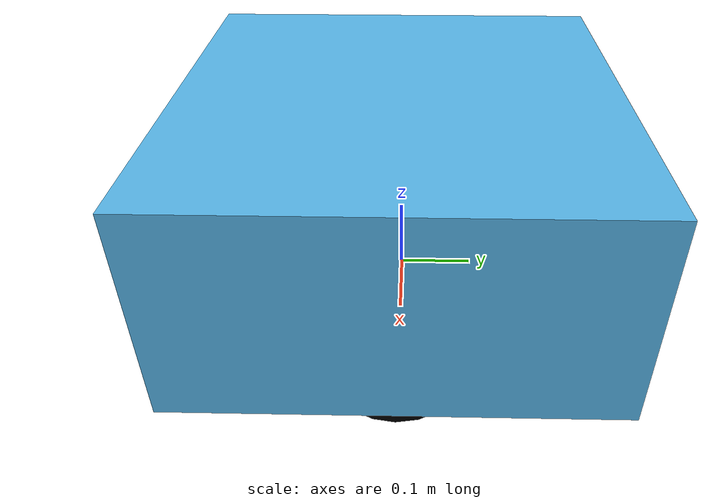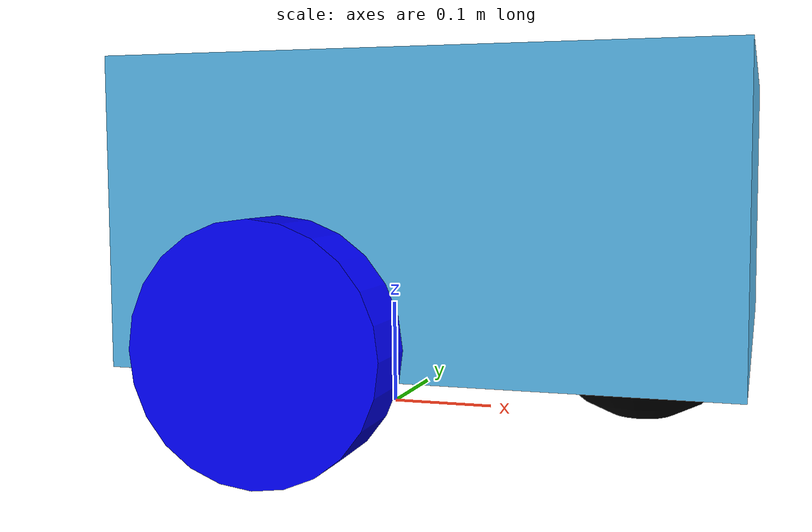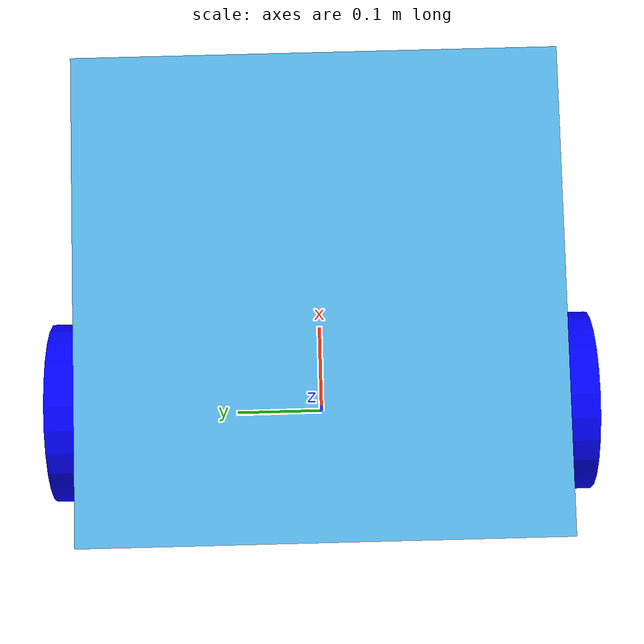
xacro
<?xml version="1.0"?>
<robot xmlns:xacro="http://www.ros.org/wiki/xacro" name="my_robot">

  <xacro:include filename="inertial_macros.xacro" />

  <!-- Definición del enlace base -->
  <link name="base_link">
    <visual>
      <geometry>
        <box size="0 0 0"/> <!-- Tamaño del enlace base -->
      </geometry>
      <material name="grey">
        <color rgba="0.5 0.5 0.5 1"/>
      </material>
    </visual>
    <collision>
      <geometry>
        <box size="0 0 0"/>
      </geometry>
    </collision>
  </link>
  <gazebo reference="base_link">
    <material>Gazebo/Grey</material>
  </gazebo>

  <!-- Definición del cubo simple -->
  <link name="cube_link">
    <visual>
      <geometry>
        <box size="0.5 0.5 0.25"/>
      </geometry>
    </visual>
    <collision>
      <geometry>
        <box size="0.5 0.5 0.25"/>
      </geometry>
    </collision>
    <xacro:inertial_box mass="0.5" x="0.5" y= "0.5" z="0.25">
      <origin xyz="0 0 0" rpy="0 0 0"/>
    </xacro:inertial_box>
  </link>
  <gazebo reference="cube_link">
    <material>Gazebo/Color</material>
  </gazebo>

  <!-- Definición de la articulación del cubo -->
  <joint name="cube_joint" type="fixed">
    <parent link="base_link"/>
    <child link="cube_link"/>
    <origin xyz="0.1 0 0.2" rpy="0 0 0"/>
  </joint>

  <!-- Definicion de cilindro 1-->
  <link name="cylinder_link">
    <visual>
      <geometry>
          <cylinder radius="0.0" length="0.0"/>
      </geometry>
      <material name="blue">
        <color rgba="0 0 1 1"/>
      </material>
    </visual>
    <collision>
      <geometry>
        <cylinder radius="0.0" length="0.0"/>
      </geometry>
    </collision>
  </link>
  <gazebo reference="cylinder_link">
    <material>Gazebo/Blue</material>
  </gazebo>

  <!-- Articulación para conectar cylinder_link a base_link -->
  <joint name="cylinder_joint" type="fixed">
    <parent link="base_link"/>
    <child link="cylinder_link"/>
    <origin xyz="0 0 0.1" rpy="0 0 0"/>
  </joint>

  <!-- Definición de la articulación de la rueda derecha -->
  <joint name="right_wheel_joint" type="fixed">
    <parent link="base_link"/>
    <child link="right_wheel_link"/>
    <origin xyz="0 0.275 0.1" rpy="-${pi/2} 0 0"/>
  </joint>

  <!-- Definición de la rueda derecha -->
  <link name="right_wheel_link">
    <visual>
      <geometry>
          <cylinder radius="0.1" length="0.05"/>
      </geometry>
      <material name="blue">
        <color rgba="0 0 1 1"/>
      </material>
    </visual>
    <collision>
      <geometry>
        <cylinder radius="0.1" length="0.05"/>
      </geometry>
    </collision>
    <xacro:inertial_cylinder mass="0.1" radius="0.1" length="0.05">
      <origin xyz="0 0 0" rpy="0 0 0"/>
    </xacro:inertial_cylinder>
  </link>
  <gazebo reference="right_wheel_link">
    <material>Gazebo/Blue</material>
  </gazebo>

  <!-- Definición de la articulación de la rueda izquierda -->
  <joint name="left_wheel_joint" type="fixed">
    <parent link="base_link"/>
    <child link="left_wheel_link"/>
    <origin xyz="0 -0.275 0.1" rpy="${-pi/2} 0 0"/>
  </joint>

  <!-- Definición de la rueda izquierda -->
  <link name="left_wheel_link">
    <visual>
      <geometry>
          <cylinder radius="0.1" length="0.05"/>
      </geometry>
      <material name="blue">
        <color rgba="0 0 1 1"/>
      </material>
    </visual>
    <collision>
      <geometry>
        <cylinder radius="0.1" length="0.05"/>
      </geometry>
    </collision>
    <xacro:inertial_cylinder mass="0.1" radius="0.1" length="0.05">
      <origin xyz="0 0 0" rpy="0 0 0"/>
    </xacro:inertial_cylinder>
  </link>
  <gazebo reference="left_wheel_link">
    <material>Gazebo/Blue</material>
  </gazebo>

  <!-- Definición de la esfera -->
  <link name="sphere_link">
    <visual>
      <geometry>
        <sphere radius="0.1"/>
      </geometry>
      <material name="black">
        <color rgba="0 0 0 1"/>
      </material>
    </visual>
    <collision>
      <geometry>
        <sphere radius="0.1"/>
      </geometry>
    </collision>
    <xacro:inertial_sphere mass="0.1" radius="0.1">
      <origin xyz="0 0 0" rpy="0 0 0"/>
    </xacro:inertial_sphere>
  </link>
  <gazebo reference="sphere_link">
    <material>Gazebo/Black</material>
  </gazebo>

  <!-- Articulación para conectar sphere_link a base_link -->
  <joint name="sphere_joint" type="fixed">
    <parent link="base_link"/>
    <child link="sphere_link"/>
    <origin xyz="0.25 0 0.1" rpy="0 0 0"/>
  </joint>
</robot>
